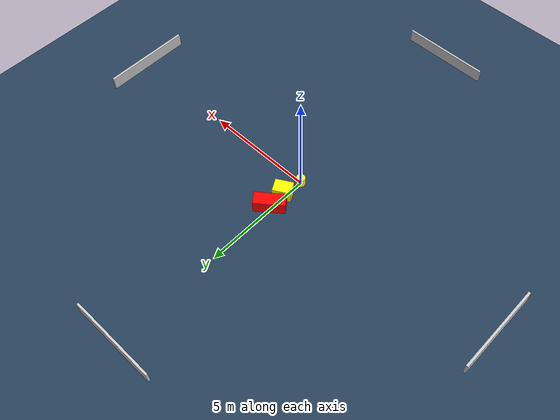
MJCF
<?xml version="1.0" ?>
<mujoco model="generated_environment">
  <option timestep="0.01" integrator="RK4" cone="elliptic"/>
  <default>
    <geom density="1"/>
  </default>
  <asset>
    <texture builtin="gradient" height="3072" name="skybox" rgb1="0.3 0.5 0.7" rgb2="0 0 0" type="skybox" width="512"/>
    <texture builtin="checker" height="300" name="groundplane" rgb1="0.2 0.3 0.4" rgb2="0.1 0.2 0.3" type="2d" width="300"/>
    <material name="groundplane" reflectance="0.2" texrepeat="5 5" texture="groundplane"/>
  </asset>
  <worldbody>
    <light dir="0 0 -1" directional="true" pos="0 0 1.5"/>
    <geom condim="3" friction="0.5 0.005 0.001" material="groundplane" name="floor" pos="0 0 0" size="0 0 0.05" type="plane"/>
    <body name="walls">
      <geom name="wall_1" condim="4" pos="-10.0 0.0 0.3" rgba="0.800000011920929 0.800000011920929 0.800000011920929 1.0" size="0.05 2.0 0.3" type="box"/>
      <geom name="wall_2" condim="4" pos="10.0 0.0 0.3" rgba="0.800000011920929 0.800000011920929 0.800000011920929 1.0" size="0.05 2.0 0.3" type="box"/>
      <geom name="wall_3" condim="4" pos="0.0 -10.0 0.3" rgba="0.800000011920929 0.800000011920929 0.800000011920929 1.0" size="2.0 0.05 0.3" type="box"/>
      <geom name="wall_4" condim="4" pos="0.0 10.0 0.3" rgba="0.800000011920929 0.800000011920929 0.800000011920929 1.0" size="2.0 0.05 0.3" type="box"/>
    </body>
    <body name="robot">
      <joint name="joint_x" type="slide" pos="0 0 0" axis="1 0 0"/>
      <joint name="joint_y" type="slide" pos="0 0 0" axis="0 1 0"/>
      <geom name="robot" type="cylinder" pos="0.0 0.0 0.2" size="0.2 0.2 0.0" mass="5.0" friction="1.0 0.005 0.0001" condim="4" rgba="1.0 1.0 0.0 1.0"/>
    </body>
    <body name="obstacle_1_movable">
      <geom name="obstacle_1_movable" condim="4" pos="0.142307449936403 0.9234769114142399 0.3" euler="0 0 29.15255678778749" friction="0.0 0.005 0.001" rgba="1.0 1.0 0.0 1.0" size="0.3992821073111783 0.2994121266711908 0.3" type="box" mass="0.1"/>
      <joint type="free"/>
    </body>
    <body name="obstacle_2_static">
      <geom name="obstacle_2_static" condim="4" pos="0.11219211973913962 1.7459715551478034 0.3" euler="0 0 308.04035504085266" friction="0.0 0.005 0.001" rgba="1.0 0.0 0.0 1.0" size="0.2868722070447073 0.6811016610863448 0.3" type="box"/>
    </body>
  </worldbody>
  <actuator>
    <motor name="actuator_x" joint="joint_x" gear="1" ctrlrange="-1 1"/>
    <motor name="actuator_y" joint="joint_y" gear="1" ctrlrange="-1 1"/>
  </actuator>
</mujoco>
